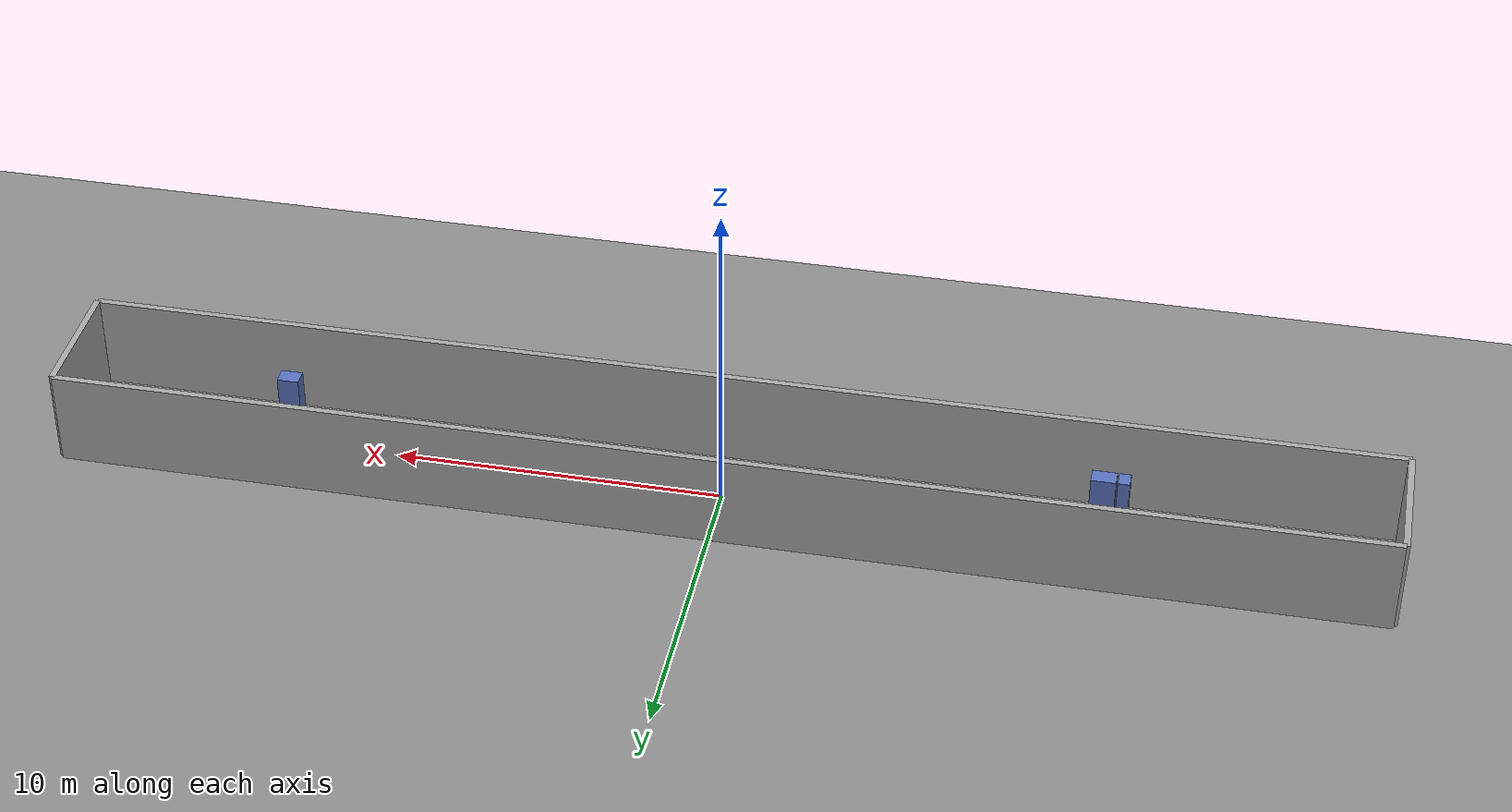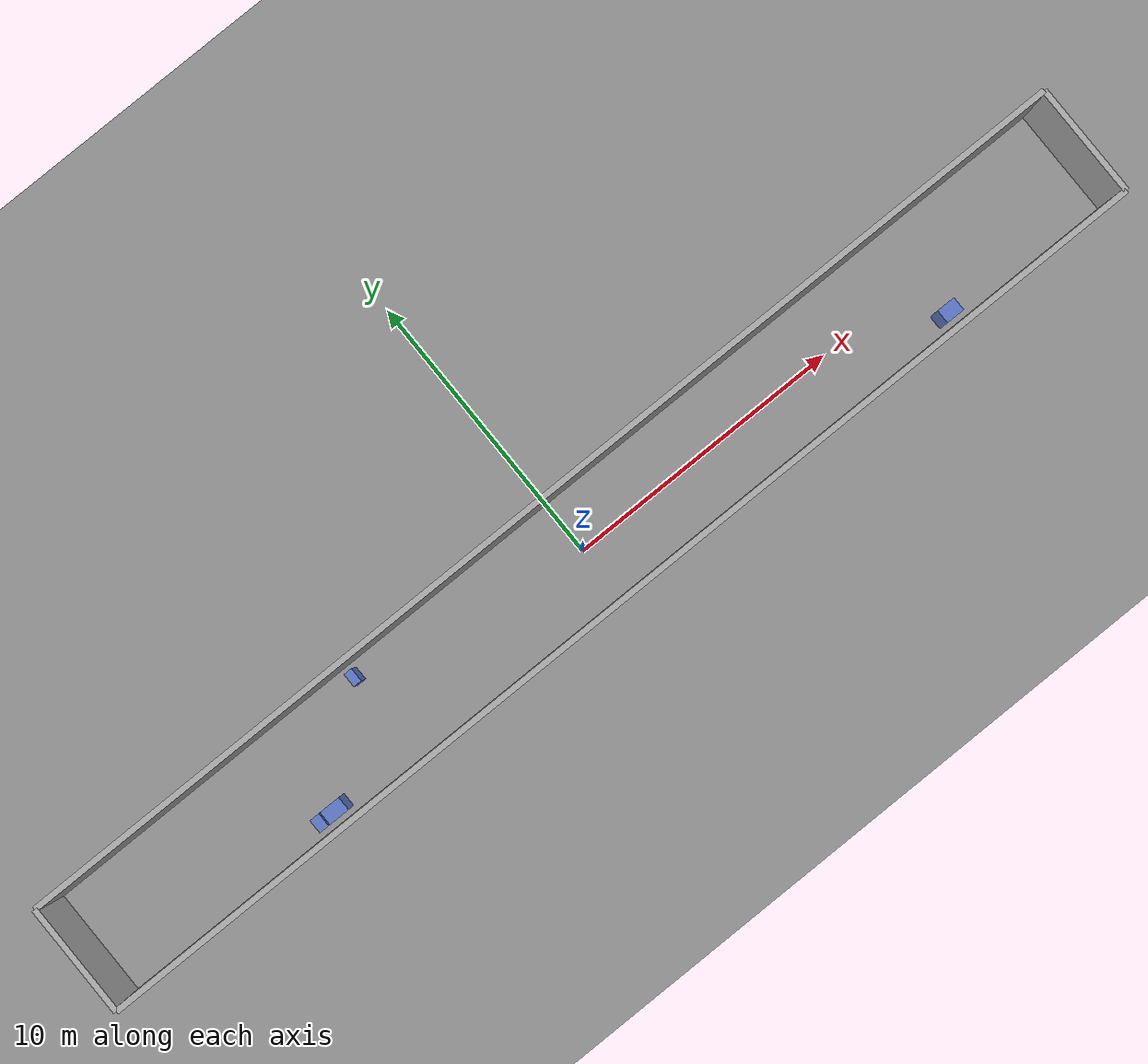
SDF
<?xml version="1.0"?>
<sdf version="1.6">
  <world name="corridor_dark_medium_1">
    <physics name="default_physics" type="ode">
      <real_time_update_rate>1000</real_time_update_rate>
      <max_step_size>0.001</max_step_size>
    </physics>
    <scene>
      <ambient>0.01 0.01 0.01 1</ambient>
      <background>0.08 0.09 0.12 1</background>
      <shadows>true</shadows>
    </scene>
    <light name="sun" type="directional">
      <cast_shadows>true</cast_shadows>
      <pose>0 0 20 0 0 0</pose>
      <diffuse>0.04 0.04 0.04 1.0</diffuse>
      <specular>0.04 0.04 0.04 1.0</specular>
      <direction>-0.5 0.2 -1</direction>
    </light>
    <model name="ground_plane">
      <static>true</static>
      <link name="link">
        <collision name="collision"><geometry><plane><normal>0 0 1</normal><size>100 100</size></plane></geometry></collision>
        <visual name="visual">
          <geometry><plane><normal>0 0 1</normal><size>100 100</size></plane></geometry>
          <material><ambient>0.35 0.35 0.35 1</ambient><diffuse>0.55 0.55 0.55 1</diffuse></material>
        </visual>
      </link>
    </model>

    <model name="wall_left">
      <static>true</static>
      <pose>0.0000 2.0000 1.5000 0 0 0</pose>
      <link name="link">
        <collision name="collision"><geometry><box><size>40 0.2 3</size></box></geometry></collision>
        <visual name="visual">
          <geometry><box><size>40 0.2 3</size></box></geometry>
          <material><ambient>0.65 0.65 0.65 1</ambient><diffuse>0.65 0.65 0.65 1</diffuse></material>
        </visual>
      </link>
    </model>

    <model name="wall_right">
      <static>true</static>
      <pose>0.0000 -2.0000 1.5000 0 0 0</pose>
      <link name="link">
        <collision name="collision"><geometry><box><size>40 0.2 3</size></box></geometry></collision>
        <visual name="visual">
          <geometry><box><size>40 0.2 3</size></box></geometry>
          <material><ambient>0.65 0.65 0.65 1</ambient><diffuse>0.65 0.65 0.65 1</diffuse></material>
        </visual>
      </link>
    </model>

    <model name="wall_end">
      <static>true</static>
      <pose>20.0000 0.0000 1.5000 0 0 0</pose>
      <link name="link">
        <collision name="collision"><geometry><box><size>0.2 4 3</size></box></geometry></collision>
        <visual name="visual">
          <geometry><box><size>0.2 4 3</size></box></geometry>
          <material><ambient>0.65 0.65 0.65 1</ambient><diffuse>0.65 0.65 0.65 1</diffuse></material>
        </visual>
      </link>
    </model>

    <model name="wall_start">
      <static>true</static>
      <pose>-20.0000 0.0000 1.5000 0 0 0</pose>
      <link name="link">
        <collision name="collision"><geometry><box><size>0.2 4 3</size></box></geometry></collision>
        <visual name="visual">
          <geometry><box><size>0.2 4 3</size></box></geometry>
          <material><ambient>0.65 0.65 0.65 1</ambient><diffuse>0.65 0.65 0.65 1</diffuse></material>
        </visual>
      </link>
    </model>

    <model name="corridor_feature_0">
      <static>true</static>
      <pose>13.7988 -1.4500 0.7000 0 0 0</pose>
      <link name="link">
        <collision name="collision"><geometry><box><size>0.6659526473683419 0.5 1.4</size></box></geometry></collision>
        <visual name="visual">
          <geometry><box><size>0.6659526473683419 0.5 1.4</size></box></geometry>
          <material><ambient>0.35 0.45 0.75 1</ambient><diffuse>0.35 0.45 0.75 1</diffuse></material>
        </visual>
      </link>
    </model>

    <model name="corridor_feature_1">
      <static>true</static>
      <pose>-8.1713 1.4500 0.7000 0 0 0</pose>
      <link name="link">
        <collision name="collision"><geometry><box><size>0.3033717033036449 0.5 1.4</size></box></geometry></collision>
        <visual name="visual">
          <geometry><box><size>0.3033717033036449 0.5 1.4</size></box></geometry>
          <material><ambient>0.35 0.45 0.75 1</ambient><diffuse>0.35 0.45 0.75 1</diffuse></material>
        </visual>
      </link>
    </model>

    <model name="corridor_feature_2">
      <static>true</static>
      <pose>-11.2466 -1.4500 0.7000 0 0 0</pose>
      <link name="link">
        <collision name="collision"><geometry><box><size>0.7562384566914057 0.5 1.4</size></box></geometry></collision>
        <visual name="visual">
          <geometry><box><size>0.7562384566914057 0.5 1.4</size></box></geometry>
          <material><ambient>0.35 0.45 0.75 1</ambient><diffuse>0.35 0.45 0.75 1</diffuse></material>
        </visual>
      </link>
    </model>

    <model name="corridor_feature_3">
      <static>true</static>
      <pose>-11.8521 -1.4500 0.7000 0 0 0</pose>
      <link name="link">
        <collision name="collision"><geometry><box><size>0.359058260457013 0.5 1.4</size></box></geometry></collision>
        <visual name="visual">
          <geometry><box><size>0.359058260457013 0.5 1.4</size></box></geometry>
          <material><ambient>0.35 0.45 0.75 1</ambient><diffuse>0.35 0.45 0.75 1</diffuse></material>
        </visual>
      </link>
    </model>
  </world>
</sdf>
